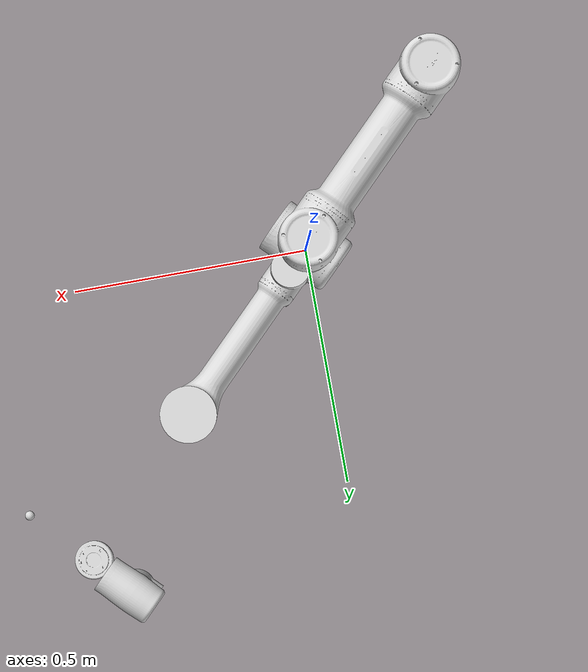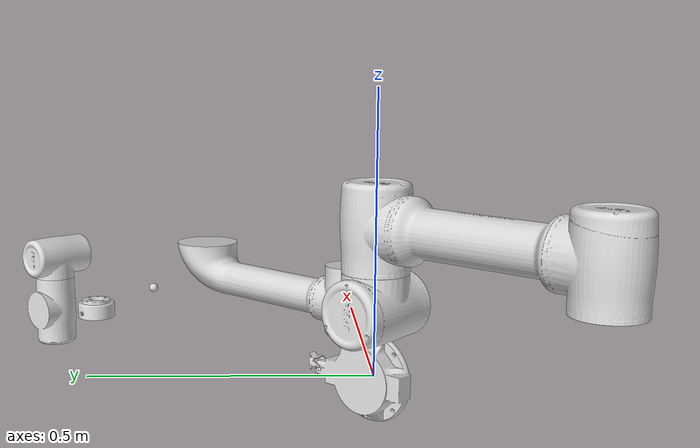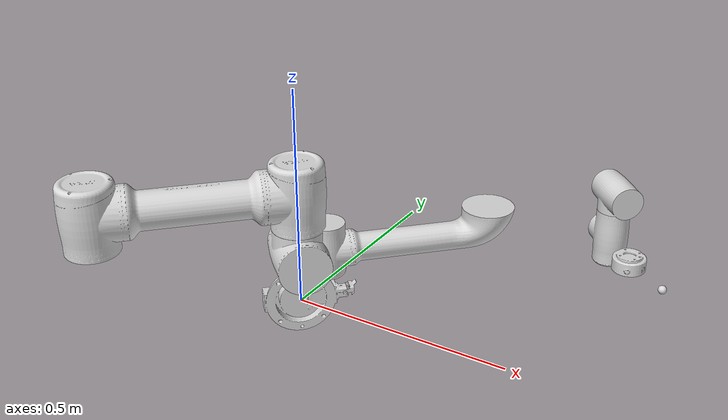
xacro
<?xml version="1.0"?>
<robot xmlns:xacro="http://ros.org/wiki/xacro" name="jaka_zu5" >

  <xacro:property name="tf_prefix" value=""/>
  <!-- LINK -->
  <link name="world" />

  <link
    name="${tf_prefix}Link_0">
    <inertial>
      <origin
        xyz="0.00096371 8.8222E-08 0.019555"
        rpy="0 0 0" />
      <mass
        value="4.0392" />
      <inertia
        ixx="0.0048763"
        ixy="-1.8056E-07"
        ixz="2.5196E-05"
        iyy="0.0068003"
        iyz="-1.7678E-09"
        izz="0.010618" />
    </inertial>
    <visual>
      <origin
        xyz="0 0 0"
        rpy="0 0 0" />
      <geometry>
        <mesh
          filename="package://jaka_description/meshes/jaka_zu5_meshes/Link_0.STL" />
      </geometry>
      <material
        name="${tf_prefix}">
        <color
          rgba="0.84706 0.84706 0.84706 1" />
      </material>
    </visual>
    <collision>
      <origin
        xyz="0 0 0"
        rpy="0 0 0" />
      <geometry>
        <mesh
          filename="package://jaka_description/meshes/jaka_zu5_meshes/Link_0.STL" />
      </geometry>
    </collision>
  </link>
  <link
    name="${tf_prefix}Link_1">
    <inertial>
      <origin
        xyz="-2.5186E-07 0.0033226 -0.001509"
        rpy="0 0 0" />
      <mass
        value="15.135" />
      <inertia
        ixx="0.044302"
        ixy="1.5349E-07"
        ixz="-6.1966E-07"
        iyy="0.043091"
        iyz="1.4326E-05"
        izz="0.030523" />
    </inertial>
    <visual>
      <origin
        xyz="0 0 0"
        rpy="0 0 0" />
      <geometry>
        <mesh
          filename="package://jaka_description/meshes/jaka_zu5_meshes/Link_1.STL" />
      </geometry>
      <material
        name="${tf_prefix}">
        <color
          rgba="0.84706 0.84706 0.84706 1" />
      </material>
    </visual>
    <collision>
      <origin
        xyz="0 0 0"
        rpy="0 0 0" />
      <geometry>
        <mesh
          filename="package://jaka_description/meshes/jaka_zu5_meshes/Link_1.STL" />
      </geometry>
    </collision>
  </link>

  <link
    name="${tf_prefix}Link_2">
    <inertial>
      <origin
        xyz="0.215 6.4325E-09 -0.14315"
        rpy="0 0 0" />
      <mass
        value="45.847" />
      <inertia
        ixx="0.10377"
        ixy="-1.3562E-06"
        ixz="2.544E-07"
        iyy="1.5964"
        iyz="2.1509E-08"
        izz="1.5689" />
    </inertial>
    <visual>
      <origin
        xyz="0 0 0"
        rpy="0 0 0" />
      <geometry>
        <mesh
          filename="package://jaka_description/meshes/jaka_zu5_meshes/Link_2.STL" />
      </geometry>
      <material
        name="${tf_prefix}">
        <color
          rgba="0.84706 0.84706 0.84706 1" />
      </material>
    </visual>
    <collision>
      <origin
        xyz="0 0 0"
        rpy="0 0 0" />
      <geometry>
        <mesh
          filename="package://jaka_description/meshes/jaka_zu5_meshes/Link_2.STL" />
      </geometry>
    </collision>
  </link>

  <link
    name="${tf_prefix}Link_3">
    <inertial>
      <origin
        xyz="0.19087 -1.1862E-05 -0.010587"
        rpy="0 0 0" />
      <mass
        value="18.069" />
      <inertia
        ixx="0.022066"
        ixy="-3.4554E-06"
        ixz="-0.022609"
        iyy="0.41632"
        iyz="1.1508E-08"
        izz="0.41071" />
    </inertial>
    <visual>
      <origin
        xyz="0 0 0"
        rpy="0 0 0" />
      <geometry>
        <mesh
          filename="package://jaka_description/meshes/jaka_zu5_meshes/Link_3.STL" />
      </geometry>
      <material
        name="${tf_prefix}">
        <color
          rgba="0.84706 0.84706 0.84706 1" />
      </material>
    </visual>
    <collision>
      <origin
        xyz="0 0 0"
        rpy="0 0 0" />
      <geometry>
        <mesh
          filename="package://jaka_description/meshes/jaka_zu5_meshes/Link_3.STL" />
      </geometry>
    </collision>
  </link>

  <link
    name="${tf_prefix}Link_4">
    <inertial>
      <origin
        xyz="-2.1345E-06 -0.0058004 0.0026717"
        rpy="0 0 0" />
      <mass
        value="5.5525" />
      <inertia
        ixx="0.0092564"
        ixy="1.1341E-07"
        ixz="-1.2578E-08"
        iyy="0.0052251"
        iyz="-8.3499E-05"
        izz="0.0089683" />
    </inertial>
    <visual>
      <origin
        xyz="0 0 0"
        rpy="0 0 0" />
      <geometry>
        <mesh
          filename="package://jaka_description/meshes/jaka_zu5_meshes/Link_4.STL" />
      </geometry>
      <material
        name="${tf_prefix}">
        <color
          rgba="0.84706 0.84706 0.84706 1" />
      </material>
    </visual>
    <collision>
      <origin
        xyz="0 0 0"
        rpy="0 0 0" />
      <geometry>
        <mesh
          filename="package://jaka_description/meshes/jaka_zu5_meshes/Link_4.STL" />
      </geometry>
    </collision>
  </link>

  <link
    name="${tf_prefix}Link_5">
    <inertial>
      <origin
        xyz="-2.0304E-06 -0.0028889 -0.0023424"
        rpy="0 0 0" />
      <mass
        value="6.3339" />
      <inertia
        ixx="0.012993"
        ixy="-1.0764E-07"
        ixz="5.8559E-09"
        iyy="0.0058454"
        iyz="4.5426E-05"
        izz="0.0127" />
    </inertial>
    <visual>
      <origin
        xyz="0 0 0"
        rpy="0 0 0" />
      <geometry>
        <mesh
          filename="package://jaka_description/meshes/jaka_zu5_meshes/Link_5.STL" />
      </geometry>
      <material
        name="${tf_prefix}">
        <color
          rgba="0.84706 0.84706 0.84706 1" />
      </material>
    </visual>
    <collision>
      <origin
        xyz="0 0 0"
        rpy="0 0 0" />
      <geometry>
        <mesh
          filename="package://jaka_description/meshes/jaka_zu5_meshes/Link_5.STL" />
      </geometry>
    </collision>
  </link>

  <link
    name="${tf_prefix}Link_6">
    <inertial>
      <origin
        xyz="2.7652E-05 -1.3485E-05 -0.021245"
        rpy="0 0 0" />
      <mass
        value="1.4169" />
      <inertia
        ixx="0.00071853"
        ixy="-6.9778E-07"
        ixz="-6.378E-07"
        iyy="0.00072375"
        iyz="8.3072E-07"
        izz="0.0011337" />
    </inertial>
    <visual>
      <origin
        xyz="0 0 0"
        rpy="0 0 0" />
      <geometry>
        <mesh
          filename="package://jaka_description/meshes/jaka_zu5_meshes/Link_6.STL" />
      </geometry>
      <material
        name="${tf_prefix}">
        <color
          rgba="0.84706 0.84706 0.84706 1" />
      </material>
    </visual>
    <collision>
      <origin
        xyz="0 0 0"
        rpy="0 0 0" />
      <geometry>
        <mesh
          filename="package://jaka_description/meshes/jaka_zu5_meshes/Link_6.STL" />
      </geometry>
    </collision>
  </link>

  <link
    name="${tf_prefix}Link_EE">
    <visual>
      <origin
        xyz="0 0 0"
        rpy="0 0 0" />
      <geometry>
        <sphere radius="0.01"/>
      </geometry>
      <material
        name="${tf_prefix}">
        <color
          rgba="0.84706 0.84706 0.84706 1" />
      </material>
    </visual>
    <collision>
      <origin
        xyz="0 0 0"
        rpy="0 0 0" />
      <geometry>
        <sphere radius="0.01"/>
      </geometry>
    </collision>
  </link>

  <!-- JOINT -->
  <joint name="${tf_prefix}fixed" type="fixed">
    <origin xyz="0 0 0" rpy="0 0 0.785" />
     <parent link="world"/>
     <child link="${tf_prefix}Link_0"/>
  </joint>

  <joint
    name="joint_1"
    type="revolute">
    <origin
      xyz="0 0 0.12015"
      rpy="0 0 0" />
    <parent
      link="${tf_prefix}Link_0" />
    <child
      link="${tf_prefix}Link_1" />
    <axis
      xyz="0 0 1" />
    <limit
      lower="-6.28"
      upper="6.28"
      effort="2000"
      velocity="3.14" />
  </joint>

  <joint
    name="joint_2"
    type="revolute">
    <origin
      xyz="0 0 0"
      rpy="1.5708 0 0" />
    <parent
      link="${tf_prefix}Link_1" />
    <child
      link="${tf_prefix}Link_2" />
    <axis
      xyz="0 0 1" />
    <limit
      lower="-1.48"
      upper="4.62"
      effort="5000"
      velocity="3.14" />
  </joint>

  <joint
    name="joint_3"
    type="revolute">
    <origin
      xyz="0.43 0 0"
      rpy="0 0 0" />
    <parent
      link="${tf_prefix}Link_2" />
    <child
      link="${tf_prefix}Link_3" />
    <axis
      xyz="0 0 1" />
    <limit
      lower="-3.05"
      upper="3.05"
      effort="5000"
      velocity="3.14" />
  </joint>

  <joint
    name="joint_4"
    type="revolute">
    <origin
      xyz="0.3685 -1.185E-05 -0.114"
      rpy="0 0 0" />
    <parent
      link="${tf_prefix}Link_3" />
    <child
      link="${tf_prefix}Link_4" />
    <axis
      xyz="0 0 1" />
    <limit
      lower="-1.48"
      upper="4.62"
      effort="2000"
      velocity="3.14" />
  </joint>

  <joint
    name="joint_5"
    type="revolute">
    <origin
      xyz="0 -0.1135 0"
      rpy="1.5708 0 0" />
    <parent
      link="${tf_prefix}Link_4" />
    <child
      link="${tf_prefix}Link_5" />
    <axis
      xyz="0 0 1" />
    <limit
      lower="-6.28"
      upper="6.28"
      effort="3000"
      velocity="3.14" />
  </joint>

  <joint
    name="joint_6"
    type="revolute">
    <origin
      xyz="0 0.107 0"
      rpy="-1.5708 0 0" />
    <parent
      link="${tf_prefix}Link_5" />
    <child
      link="${tf_prefix}Link_6" />
    <axis
      xyz="0 0 1" />
    <limit
      lower="-6.28"
      upper="6.28"
      effort="1000"
      velocity="3.14" />
  </joint>

  <joint name="${tf_prefix}ee_joint" type="fixed">
    <origin xyz="0 0 0.166" rpy="0 0 0" />
     <parent link="${tf_prefix}Link_6"/>
     <child link="${tf_prefix}Link_EE"/>
  </joint>
</robot>
